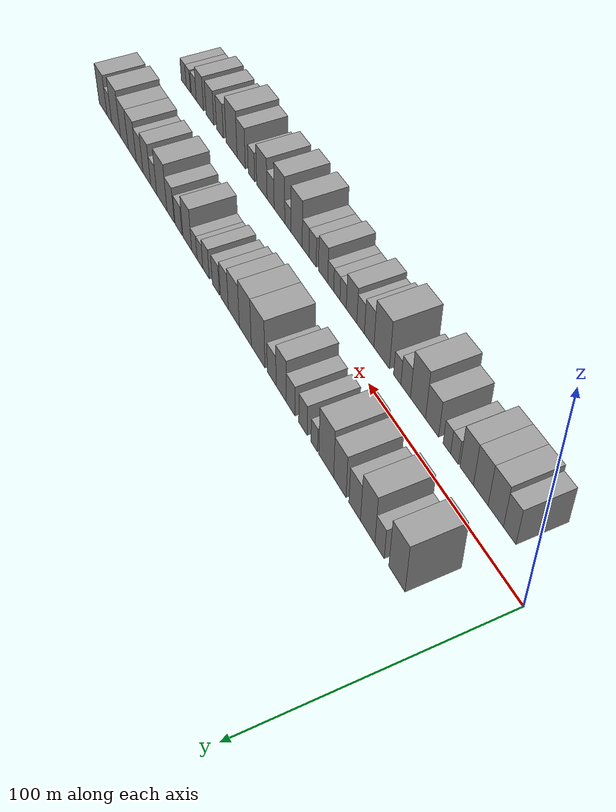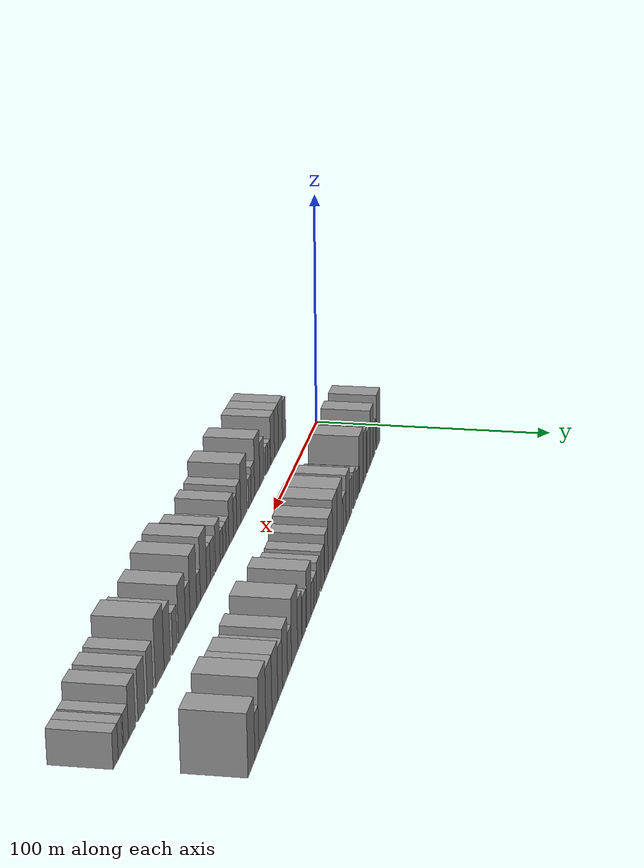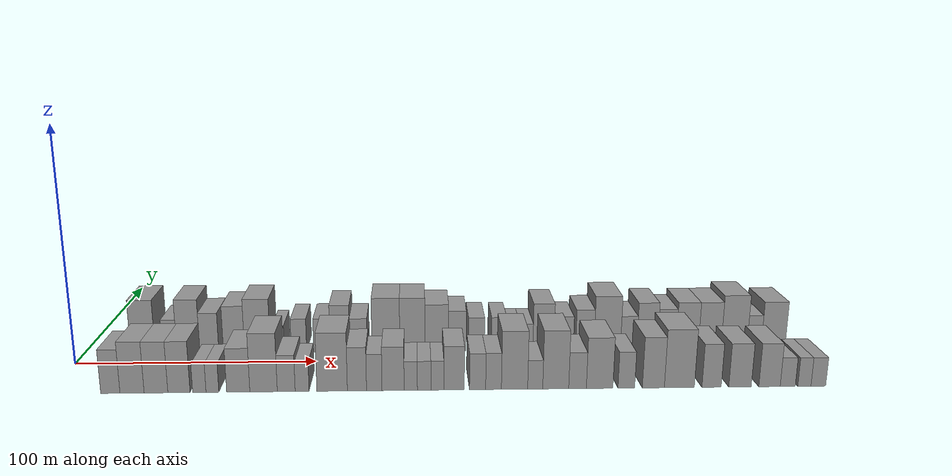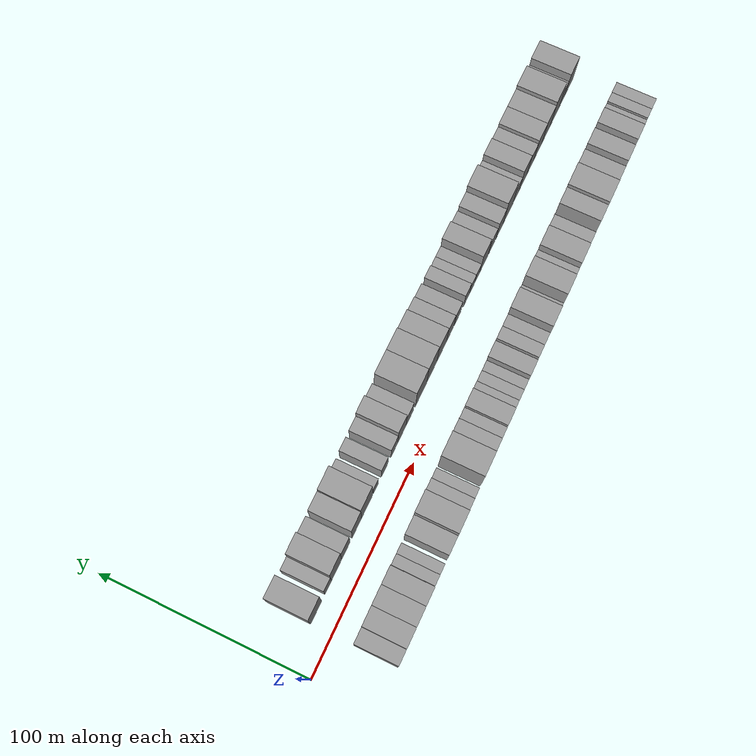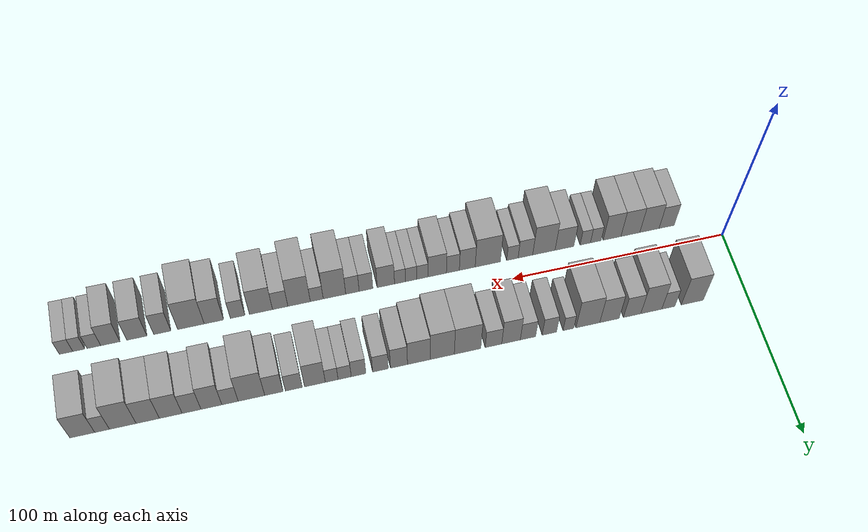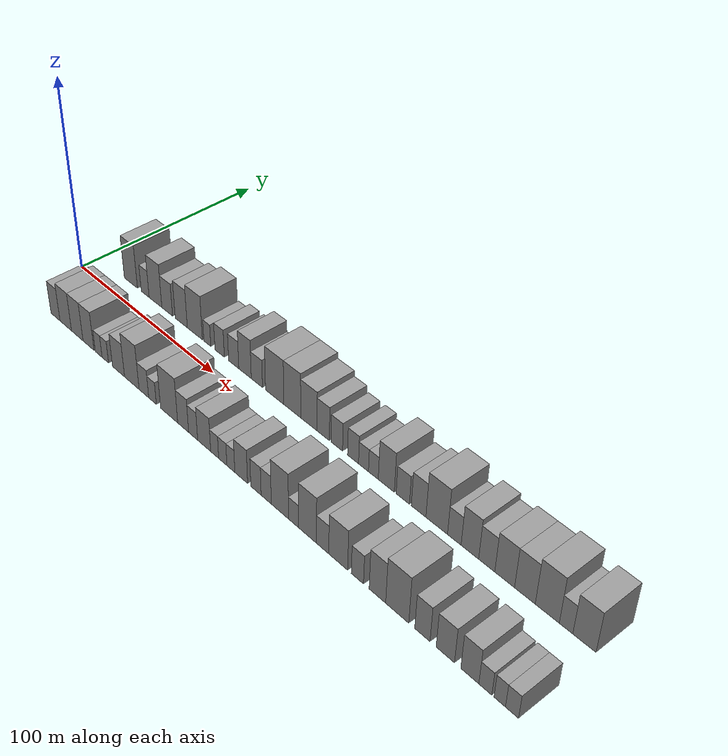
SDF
<sdf version="1.6">
 <world name="default">
  <scene>
   <sky><clouds><speed>12</speed></clouds></sky>
   <ambient>0.4 0.4 0.4 1</ambient>
   <background>0.7 0.7 0.7 1</background>
   <shadows>1</shadows>
  </scene>
  <gravity>0 0 -9.8066</gravity>
  <magnetic_field>6e-06 2.3e-05 -4.2e-05</magnetic_field>
  <physics default="0" name="default_physics" type="ode">
   <ode>
    <solver>
     <type>quick</type>
     <iters>10</iters>
     <sor>1.0</sor>
     <use_dynamic_moi_rescaling>0</use_dynamic_moi_rescaling>
    </solver>
    <constraints>
     <cfm>0</cfm>
     <erp>0.2</erp>
     <contact_max_correcting_vel>100</contact_max_correcting_vel>
     <contact_surface_layer>0.001</contact_surface_layer>
    </constraints>
   </ode>
   <max_step_size>0.004</max_step_size>
   <real_time_factor>1</real_time_factor>
   <real_time_update_rate>250</real_time_update_rate>
  </physics>
  <light name="sun" type="directional">
   <pose>0 0 10 0 0 0</pose>
   <diffuse>0.8 0.8 0.8 1</diffuse>
   <specular>0.2 0.2 0.2 1</specular>
   <attenuation>
    <range>1000</range>
    <constant>0.9</constant>
    <linear>0.01</linear>
    <quadratic>0.001</quadratic>
   </attenuation>
   <direction>-0.5 0.1 -0.9</direction>
  </light>
  <model name="building_1">
   <static>1</static>
   <pose>25.1743 20.0000 0 0.000000 0.000000 1.570796</pose>
   <link name="link">
    <pose>0 0 12.00 0 0 0</pose>
    <collision name="collision"><geometry><box><size>20.0000 10.3486 24.0000</size></box></geometry></collision>
    <visual name="visual">
     <cast_shadows>0</cast_shadows>
     <geometry><box><size>20.0000 10.3486 24.0000</size></box></geometry>
     <material>
      <script>
       <uri>model://grey_wall/materials/scripts</uri>
       <uri>model://grey_wall/materials/textures</uri>
       <name>vrc/grey_wall</name>
      </script>
     </material>
    </visual>
   </link>
  </model>
  <model name="building_2">
   <static>1</static>
   <pose>36.4311 20.0000 0 0.000000 0.000000 1.570796</pose>
   <link name="link">
    <pose>0 0 7.50 0 0 0</pose>
    <collision name="collision"><geometry><box><size>20.0000 6.1650 15.0000</size></box></geometry></collision>
    <visual name="visual">
     <cast_shadows>0</cast_shadows>
     <geometry><box><size>20.0000 6.1650 15.0000</size></box></geometry>
     <material>
      <script>
       <uri>model://grey_wall/materials/scripts</uri>
       <uri>model://grey_wall/materials/textures</uri>
       <name>vrc/grey_wall</name>
      </script>
     </material>
    </visual>
   </link>
  </model>
  <model name="building_3">
   <static>1</static>
   <pose>44.3929 20.0000 0 0.000000 0.000000 1.570796</pose>
   <link name="link">
    <pose>0 0 12.00 0 0 0</pose>
    <collision name="collision"><geometry><box><size>20.0000 9.7587 24.0000</size></box></geometry></collision>
    <visual name="visual">
     <cast_shadows>0</cast_shadows>
     <geometry><box><size>20.0000 9.7587 24.0000</size></box></geometry>
     <material>
      <script>
       <uri>model://grey_wall/materials/scripts</uri>
       <uri>model://grey_wall/materials/textures</uri>
       <name>vrc/grey_wall</name>
      </script>
     </material>
    </visual>
   </link>
  </model>
  <model name="building_4">
   <static>1</static>
   <pose>53.3143 20.0000 0 0.000000 0.000000 1.570796</pose>
   <link name="link">
    <pose>0 0 9.00 0 0 0</pose>
    <collision name="collision"><geometry><box><size>20.0000 8.0840 18.0000</size></box></geometry></collision>
    <visual name="visual">
     <cast_shadows>0</cast_shadows>
     <geometry><box><size>20.0000 8.0840 18.0000</size></box></geometry>
     <material>
      <script>
       <uri>model://grey_wall/materials/scripts</uri>
       <uri>model://grey_wall/materials/textures</uri>
       <name>vrc/grey_wall</name>
      </script>
     </material>
    </visual>
   </link>
  </model>
  <model name="building_5">
   <static>1</static>
   <pose>63.8279 20.0000 0 0.000000 0.000000 1.570796</pose>
   <link name="link">
    <pose>0 0 10.50 0 0 0</pose>
    <collision name="collision"><geometry><box><size>20.0000 8.9433 21.0000</size></box></geometry></collision>
    <visual name="visual">
     <cast_shadows>0</cast_shadows>
     <geometry><box><size>20.0000 8.9433 21.0000</size></box></geometry>
     <material>
      <script>
       <uri>model://grey_wall/materials/scripts</uri>
       <uri>model://grey_wall/materials/textures</uri>
       <name>vrc/grey_wall</name>
      </script>
     </material>
    </visual>
   </link>
  </model>
  <model name="building_6">
   <static>1</static>
   <pose>73.7910 20.0000 0 0.000000 0.000000 1.570796</pose>
   <link name="link">
    <pose>0 0 12.00 0 0 0</pose>
    <collision name="collision"><geometry><box><size>20.0000 10.9828 24.0000</size></box></geometry></collision>
    <visual name="visual">
     <cast_shadows>0</cast_shadows>
     <geometry><box><size>20.0000 10.9828 24.0000</size></box></geometry>
     <material>
      <script>
       <uri>model://grey_wall/materials/scripts</uri>
       <uri>model://grey_wall/materials/textures</uri>
       <name>vrc/grey_wall</name>
      </script>
     </material>
    </visual>
   </link>
  </model>
  <model name="building_7">
   <static>1</static>
   <pose>82.7563 20.0000 0 0.000000 0.000000 1.570796</pose>
   <link name="link">
    <pose>0 0 6.00 0 0 0</pose>
    <collision name="collision"><geometry><box><size>20.0000 4.9477 12.0000</size></box></geometry></collision>
    <visual name="visual">
     <cast_shadows>0</cast_shadows>
     <geometry><box><size>20.0000 4.9477 12.0000</size></box></geometry>
     <material>
      <script>
       <uri>model://grey_wall/materials/scripts</uri>
       <uri>model://grey_wall/materials/textures</uri>
       <name>vrc/grey_wall</name>
      </script>
     </material>
    </visual>
   </link>
  </model>
  <model name="building_8">
   <static>1</static>
   <pose>91.5076 20.0000 0 0.000000 0.000000 1.570796</pose>
   <link name="link">
    <pose>0 0 7.50 0 0 0</pose>
    <collision name="collision"><geometry><box><size>20.0000 6.5549 15.0000</size></box></geometry></collision>
    <visual name="visual">
     <cast_shadows>0</cast_shadows>
     <geometry><box><size>20.0000 6.5549 15.0000</size></box></geometry>
     <material>
      <script>
       <uri>model://grey_wall/materials/scripts</uri>
       <uri>model://grey_wall/materials/textures</uri>
       <name>vrc/grey_wall</name>
      </script>
     </material>
    </visual>
   </link>
  </model>
  <model name="building_9">
   <static>1</static>
   <pose>101.2741 20.0000 0 0.000000 0.000000 1.570796</pose>
   <link name="link">
    <pose>0 0 7.50 0 0 0</pose>
    <collision name="collision"><geometry><box><size>20.0000 6.9781 15.0000</size></box></geometry></collision>
    <visual name="visual">
     <cast_shadows>0</cast_shadows>
     <geometry><box><size>20.0000 6.9781 15.0000</size></box></geometry>
     <material>
      <script>
       <uri>model://grey_wall/materials/scripts</uri>
       <uri>model://grey_wall/materials/textures</uri>
       <name>vrc/grey_wall</name>
      </script>
     </material>
    </visual>
   </link>
  </model>
  <model name="building_10">
   <static>1</static>
   <pose>108.9862 20.0000 0 0.000000 0.000000 1.570796</pose>
   <link name="link">
    <pose>0 0 10.50 0 0 0</pose>
    <collision name="collision"><geometry><box><size>20.0000 8.4461 21.0000</size></box></geometry></collision>
    <visual name="visual">
     <cast_shadows>0</cast_shadows>
     <geometry><box><size>20.0000 8.4461 21.0000</size></box></geometry>
     <material>
      <script>
       <uri>model://grey_wall/materials/scripts</uri>
       <uri>model://grey_wall/materials/textures</uri>
       <name>vrc/grey_wall</name>
      </script>
     </material>
    </visual>
   </link>
  </model>
  <model name="building_11">
   <static>1</static>
   <pose>116.9474 20.0000 0 0.000000 0.000000 1.570796</pose>
   <link name="link">
    <pose>0 0 7.50 0 0 0</pose>
    <collision name="collision"><geometry><box><size>20.0000 7.4762 15.0000</size></box></geometry></collision>
    <visual name="visual">
     <cast_shadows>0</cast_shadows>
     <geometry><box><size>20.0000 7.4762 15.0000</size></box></geometry>
     <material>
      <script>
       <uri>model://grey_wall/materials/scripts</uri>
       <uri>model://grey_wall/materials/textures</uri>
       <name>vrc/grey_wall</name>
      </script>
     </material>
    </visual>
   </link>
  </model>
  <model name="building_12">
   <static>1</static>
   <pose>128.6530 20.0000 0 0.000000 0.000000 1.570796</pose>
   <link name="link">
    <pose>0 0 12.00 0 0 0</pose>
    <collision name="collision"><geometry><box><size>20.0000 11.9351 24.0000</size></box></geometry></collision>
    <visual name="visual">
     <cast_shadows>0</cast_shadows>
     <geometry><box><size>20.0000 11.9351 24.0000</size></box></geometry>
     <material>
      <script>
       <uri>model://grey_wall/materials/scripts</uri>
       <uri>model://grey_wall/materials/textures</uri>
       <name>vrc/grey_wall</name>
      </script>
     </material>
    </visual>
   </link>
  </model>
  <model name="building_13">
   <static>1</static>
   <pose>140.0037 20.0000 0 0.000000 0.000000 1.570796</pose>
   <link name="link">
    <pose>0 0 12.00 0 0 0</pose>
    <collision name="collision"><geometry><box><size>20.0000 10.7661 24.0000</size></box></geometry></collision>
    <visual name="visual">
     <cast_shadows>0</cast_shadows>
     <geometry><box><size>20.0000 10.7661 24.0000</size></box></geometry>
     <material>
      <script>
       <uri>model://grey_wall/materials/scripts</uri>
       <uri>model://grey_wall/materials/textures</uri>
       <name>vrc/grey_wall</name>
      </script>
     </material>
    </visual>
   </link>
  </model>
  <model name="building_14">
   <static>1</static>
   <pose>150.4808 20.0000 0 0.000000 0.000000 1.570796</pose>
   <link name="link">
    <pose>0 0 10.50 0 0 0</pose>
    <collision name="collision"><geometry><box><size>20.0000 10.1882 21.0000</size></box></geometry></collision>
    <visual name="visual">
     <cast_shadows>0</cast_shadows>
     <geometry><box><size>20.0000 10.1882 21.0000</size></box></geometry>
     <material>
      <script>
       <uri>model://grey_wall/materials/scripts</uri>
       <uri>model://grey_wall/materials/textures</uri>
       <name>vrc/grey_wall</name>
      </script>
     </material>
    </visual>
   </link>
  </model>
  <model name="building_15">
   <static>1</static>
   <pose>159.3517 20.0000 0 0.000000 0.000000 1.570796</pose>
   <link name="link">
    <pose>0 0 9.00 0 0 0</pose>
    <collision name="collision"><geometry><box><size>20.0000 7.5536 18.0000</size></box></geometry></collision>
    <visual name="visual">
     <cast_shadows>0</cast_shadows>
     <geometry><box><size>20.0000 7.5536 18.0000</size></box></geometry>
     <material>
      <script>
       <uri>model://grey_wall/materials/scripts</uri>
       <uri>model://grey_wall/materials/textures</uri>
       <name>vrc/grey_wall</name>
      </script>
     </material>
    </visual>
   </link>
  </model>
  <model name="building_16">
   <static>1</static>
   <pose>167.5825 20.0000 0 0.000000 0.000000 1.570796</pose>
   <link name="link">
    <pose>0 0 7.50 0 0 0</pose>
    <collision name="collision"><geometry><box><size>20.0000 6.9079 15.0000</size></box></geometry></collision>
    <visual name="visual">
     <cast_shadows>0</cast_shadows>
     <geometry><box><size>20.0000 6.9079 15.0000</size></box></geometry>
     <material>
      <script>
       <uri>model://grey_wall/materials/scripts</uri>
       <uri>model://grey_wall/materials/textures</uri>
       <name>vrc/grey_wall</name>
      </script>
     </material>
    </visual>
   </link>
  </model>
  <model name="building_17">
   <static>1</static>
   <pose>177.2707 20.0000 0 0.000000 0.000000 1.570796</pose>
   <link name="link">
    <pose>0 0 7.50 0 0 0</pose>
    <collision name="collision"><geometry><box><size>20.0000 6.4686 15.0000</size></box></geometry></collision>
    <visual name="visual">
     <cast_shadows>0</cast_shadows>
     <geometry><box><size>20.0000 6.4686 15.0000</size></box></geometry>
     <material>
      <script>
       <uri>model://grey_wall/materials/scripts</uri>
       <uri>model://grey_wall/materials/textures</uri>
       <name>vrc/grey_wall</name>
      </script>
     </material>
    </visual>
   </link>
  </model>
  <model name="building_18">
   <static>1</static>
   <pose>183.3950 20.0000 0 0.000000 0.000000 1.570796</pose>
   <link name="link">
    <pose>0 0 6.00 0 0 0</pose>
    <collision name="collision"><geometry><box><size>20.0000 5.7799 12.0000</size></box></geometry></collision>
    <visual name="visual">
     <cast_shadows>0</cast_shadows>
     <geometry><box><size>20.0000 5.7799 12.0000</size></box></geometry>
     <material>
      <script>
       <uri>model://grey_wall/materials/scripts</uri>
       <uri>model://grey_wall/materials/textures</uri>
       <name>vrc/grey_wall</name>
      </script>
     </material>
    </visual>
   </link>
  </model>
  <model name="building_19">
   <static>1</static>
   <pose>189.0943 20.0000 0 0.000000 0.000000 1.570796</pose>
   <link name="link">
    <pose>0 0 6.00 0 0 0</pose>
    <collision name="collision"><geometry><box><size>20.0000 5.6186 12.0000</size></box></geometry></collision>
    <visual name="visual">
     <cast_shadows>0</cast_shadows>
     <geometry><box><size>20.0000 5.6186 12.0000</size></box></geometry>
     <material>
      <script>
       <uri>model://grey_wall/materials/scripts</uri>
       <uri>model://grey_wall/materials/textures</uri>
       <name>vrc/grey_wall</name>
      </script>
     </material>
    </visual>
   </link>
  </model>
  <model name="building_20">
   <static>1</static>
   <pose>196.4568 20.0000 0 0.000000 0.000000 1.570796</pose>
   <link name="link">
    <pose>0 0 10.50 0 0 0</pose>
    <collision name="collision"><geometry><box><size>20.0000 9.1064 21.0000</size></box></geometry></collision>
    <visual name="visual">
     <cast_shadows>0</cast_shadows>
     <geometry><box><size>20.0000 9.1064 21.0000</size></box></geometry>
     <material>
      <script>
       <uri>model://grey_wall/materials/scripts</uri>
       <uri>model://grey_wall/materials/textures</uri>
       <name>vrc/grey_wall</name>
      </script>
     </material>
    </visual>
   </link>
  </model>
  <model name="building_21">
   <static>1</static>
   <pose>205.6978 20.0000 0 0.000000 0.000000 1.570796</pose>
   <link name="link">
    <pose>0 0 7.50 0 0 0</pose>
    <collision name="collision"><geometry><box><size>20.0000 7.3757 15.0000</size></box></geometry></collision>
    <visual name="visual">
     <cast_shadows>0</cast_shadows>
     <geometry><box><size>20.0000 7.3757 15.0000</size></box></geometry>
     <material>
      <script>
       <uri>model://grey_wall/materials/scripts</uri>
       <uri>model://grey_wall/materials/textures</uri>
       <name>vrc/grey_wall</name>
      </script>
     </material>
    </visual>
   </link>
  </model>
  <model name="building_22">
   <static>1</static>
   <pose>214.3622 20.0000 0 0.000000 0.000000 1.570796</pose>
   <link name="link">
    <pose>0 0 9.00 0 0 0</pose>
    <collision name="collision"><geometry><box><size>20.0000 7.9530 18.0000</size></box></geometry></collision>
    <visual name="visual">
     <cast_shadows>0</cast_shadows>
     <geometry><box><size>20.0000 7.9530 18.0000</size></box></geometry>
     <material>
      <script>
       <uri>model://grey_wall/materials/scripts</uri>
       <uri>model://grey_wall/materials/textures</uri>
       <name>vrc/grey_wall</name>
      </script>
     </material>
    </visual>
   </link>
  </model>
  <model name="building_23">
   <static>1</static>
   <pose>224.0813 20.0000 0 0.000000 0.000000 1.570796</pose>
   <link name="link">
    <pose>0 0 12.00 0 0 0</pose>
    <collision name="collision"><geometry><box><size>20.0000 11.4852 24.0000</size></box></geometry></collision>
    <visual name="visual">
     <cast_shadows>0</cast_shadows>
     <geometry><box><size>20.0000 11.4852 24.0000</size></box></geometry>
     <material>
      <script>
       <uri>model://grey_wall/materials/scripts</uri>
       <uri>model://grey_wall/materials/textures</uri>
       <name>vrc/grey_wall</name>
      </script>
     </material>
    </visual>
   </link>
  </model>
  <model name="building_24">
   <static>1</static>
   <pose>233.3610 20.0000 0 0.000000 0.000000 1.570796</pose>
   <link name="link">
    <pose>0 0 7.50 0 0 0</pose>
    <collision name="collision"><geometry><box><size>20.0000 7.0742 15.0000</size></box></geometry></collision>
    <visual name="visual">
     <cast_shadows>0</cast_shadows>
     <geometry><box><size>20.0000 7.0742 15.0000</size></box></geometry>
     <material>
      <script>
       <uri>model://grey_wall/materials/scripts</uri>
       <uri>model://grey_wall/materials/textures</uri>
       <name>vrc/grey_wall</name>
      </script>
     </material>
    </visual>
   </link>
  </model>
  <model name="building_25">
   <static>1</static>
   <pose>241.3886 20.0000 0 0.000000 0.000000 1.570796</pose>
   <link name="link">
    <pose>0 0 10.50 0 0 0</pose>
    <collision name="collision"><geometry><box><size>20.0000 8.9811 21.0000</size></box></geometry></collision>
    <visual name="visual">
     <cast_shadows>0</cast_shadows>
     <geometry><box><size>20.0000 8.9811 21.0000</size></box></geometry>
     <material>
      <script>
       <uri>model://grey_wall/materials/scripts</uri>
       <uri>model://grey_wall/materials/textures</uri>
       <name>vrc/grey_wall</name>
      </script>
     </material>
    </visual>
   </link>
  </model>
  <model name="building_26">
   <static>1</static>
   <pose>249.9192 20.0000 0 0.000000 0.000000 1.570796</pose>
   <link name="link">
    <pose>0 0 9.00 0 0 0</pose>
    <collision name="collision"><geometry><box><size>20.0000 8.0800 18.0000</size></box></geometry></collision>
    <visual name="visual">
     <cast_shadows>0</cast_shadows>
     <geometry><box><size>20.0000 8.0800 18.0000</size></box></geometry>
     <material>
      <script>
       <uri>model://grey_wall/materials/scripts</uri>
       <uri>model://grey_wall/materials/textures</uri>
       <name>vrc/grey_wall</name>
      </script>
     </material>
    </visual>
   </link>
  </model>
  <model name="building_27">
   <static>1</static>
   <pose>258.8169 20.0000 0 0.000000 0.000000 1.570796</pose>
   <link name="link">
    <pose>0 0 10.50 0 0 0</pose>
    <collision name="collision"><geometry><box><size>20.0000 9.7153 21.0000</size></box></geometry></collision>
    <visual name="visual">
     <cast_shadows>0</cast_shadows>
     <geometry><box><size>20.0000 9.7153 21.0000</size></box></geometry>
     <material>
      <script>
       <uri>model://grey_wall/materials/scripts</uri>
       <uri>model://grey_wall/materials/textures</uri>
       <name>vrc/grey_wall</name>
      </script>
     </material>
    </visual>
   </link>
  </model>
  <model name="building_28">
   <static>1</static>
   <pose>268.6389 20.0000 0 0.000000 0.000000 1.570796</pose>
   <link name="link">
    <pose>0 0 10.50 0 0 0</pose>
    <collision name="collision"><geometry><box><size>20.0000 9.9288 21.0000</size></box></geometry></collision>
    <visual name="visual">
     <cast_shadows>0</cast_shadows>
     <geometry><box><size>20.0000 9.9288 21.0000</size></box></geometry>
     <material>
      <script>
       <uri>model://grey_wall/materials/scripts</uri>
       <uri>model://grey_wall/materials/textures</uri>
       <name>vrc/grey_wall</name>
      </script>
     </material>
    </visual>
   </link>
  </model>
  <model name="building_29">
   <static>1</static>
   <pose>279.2362 20.0000 0 0.000000 0.000000 1.570796</pose>
   <link name="link">
    <pose>0 0 12.00 0 0 0</pose>
    <collision name="collision"><geometry><box><size>20.0000 11.2658 24.0000</size></box></geometry></collision>
    <visual name="visual">
     <cast_shadows>0</cast_shadows>
     <geometry><box><size>20.0000 11.2658 24.0000</size></box></geometry>
     <material>
      <script>
       <uri>model://grey_wall/materials/scripts</uri>
       <uri>model://grey_wall/materials/textures</uri>
       <name>vrc/grey_wall</name>
      </script>
     </material>
    </visual>
   </link>
  </model>
  <model name="building_30">
   <static>1</static>
   <pose>287.9729 20.0000 0 0.000000 0.000000 1.570796</pose>
   <link name="link">
    <pose>0 0 7.50 0 0 0</pose>
    <collision name="collision"><geometry><box><size>20.0000 6.2075 15.0000</size></box></geometry></collision>
    <visual name="visual">
     <cast_shadows>0</cast_shadows>
     <geometry><box><size>20.0000 6.2075 15.0000</size></box></geometry>
     <material>
      <script>
       <uri>model://grey_wall/materials/scripts</uri>
       <uri>model://grey_wall/materials/textures</uri>
       <name>vrc/grey_wall</name>
      </script>
     </material>
    </visual>
   </link>
  </model>
  <model name="building_31">
   <static>1</static>
   <pose>296.3092 20.0000 0 0.000000 0.000000 1.570796</pose>
   <link name="link">
    <pose>0 0 10.50 0 0 0</pose>
    <collision name="collision"><geometry><box><size>20.0000 10.4650 21.0000</size></box></geometry></collision>
    <visual name="visual">
     <cast_shadows>0</cast_shadows>
     <geometry><box><size>20.0000 10.4650 21.0000</size></box></geometry>
     <material>
      <script>
       <uri>model://grey_wall/materials/scripts</uri>
       <uri>model://grey_wall/materials/textures</uri>
       <name>vrc/grey_wall</name>
      </script>
     </material>
    </visual>
   </link>
  </model>
  <model name="building_32">
   <static>1</static>
   <pose>23.6801 -20.0000 0 0.000000 0.000000 1.570796</pose>
   <link name="link">
    <pose>0 0 9.00 0 0 0</pose>
    <collision name="collision"><geometry><box><size>20.0000 7.3602 18.0000</size></box></geometry></collision>
    <visual name="visual">
     <cast_shadows>0</cast_shadows>
     <geometry><box><size>20.0000 7.3602 18.0000</size></box></geometry>
     <material>
      <script>
       <uri>model://grey_wall/materials/scripts</uri>
       <uri>model://grey_wall/materials/textures</uri>
       <name>vrc/grey_wall</name>
      </script>
     </material>
    </visual>
   </link>
  </model>
  <model name="building_33">
   <static>1</static>
   <pose>31.9837 -20.0000 0 0.000000 0.000000 1.570796</pose>
   <link name="link">
    <pose>0 0 10.50 0 0 0</pose>
    <collision name="collision"><geometry><box><size>20.0000 9.2469 21.0000</size></box></geometry></collision>
    <visual name="visual">
     <cast_shadows>0</cast_shadows>
     <geometry><box><size>20.0000 9.2469 21.0000</size></box></geometry>
     <material>
      <script>
       <uri>model://grey_wall/materials/scripts</uri>
       <uri>model://grey_wall/materials/textures</uri>
       <name>vrc/grey_wall</name>
      </script>
     </material>
    </visual>
   </link>
  </model>
  <model name="building_34">
   <static>1</static>
   <pose>41.1526 -20.0000 0 0.000000 0.000000 1.570796</pose>
   <link name="link">
    <pose>0 0 10.50 0 0 0</pose>
    <collision name="collision"><geometry><box><size>20.0000 9.0909 21.0000</size></box></geometry></collision>
    <visual name="visual">
     <cast_shadows>0</cast_shadows>
     <geometry><box><size>20.0000 9.0909 21.0000</size></box></geometry>
     <material>
      <script>
       <uri>model://grey_wall/materials/scripts</uri>
       <uri>model://grey_wall/materials/textures</uri>
       <name>vrc/grey_wall</name>
      </script>
     </material>
    </visual>
   </link>
  </model>
  <model name="building_35">
   <static>1</static>
   <pose>49.9651 -20.0000 0 0.000000 0.000000 1.570796</pose>
   <link name="link">
    <pose>0 0 10.50 0 0 0</pose>
    <collision name="collision"><geometry><box><size>20.0000 8.5342 21.0000</size></box></geometry></collision>
    <visual name="visual">
     <cast_shadows>0</cast_shadows>
     <geometry><box><size>20.0000 8.5342 21.0000</size></box></geometry>
     <material>
      <script>
       <uri>model://grey_wall/materials/scripts</uri>
       <uri>model://grey_wall/materials/textures</uri>
       <name>vrc/grey_wall</name>
      </script>
     </material>
    </visual>
   </link>
  </model>
  <model name="building_36">
   <static>1</static>
   <pose>57.7911 -20.0000 0 0.000000 0.000000 1.570796</pose>
   <link name="link">
    <pose>0 0 6.00 0 0 0</pose>
    <collision name="collision"><geometry><box><size>20.0000 5.1178 12.0000</size></box></geometry></collision>
    <visual name="visual">
     <cast_shadows>0</cast_shadows>
     <geometry><box><size>20.0000 5.1178 12.0000</size></box></geometry>
     <material>
      <script>
       <uri>model://grey_wall/materials/scripts</uri>
       <uri>model://grey_wall/materials/textures</uri>
       <name>vrc/grey_wall</name>
      </script>
     </material>
    </visual>
   </link>
  </model>
  <model name="building_37">
   <static>1</static>
   <pose>62.8131 -20.0000 0 0.000000 0.000000 1.570796</pose>
   <link name="link">
    <pose>0 0 6.00 0 0 0</pose>
    <collision name="collision"><geometry><box><size>20.0000 4.9261 12.0000</size></box></geometry></collision>
    <visual name="visual">
     <cast_shadows>0</cast_shadows>
     <geometry><box><size>20.0000 4.9261 12.0000</size></box></geometry>
     <material>
      <script>
       <uri>model://grey_wall/materials/scripts</uri>
       <uri>model://grey_wall/materials/textures</uri>
       <name>vrc/grey_wall</name>
      </script>
     </material>
    </visual>
   </link>
  </model>
  <model name="building_38">
   <static>1</static>
   <pose>72.7367 -20.0000 0 0.000000 0.000000 1.570796</pose>
   <link name="link">
    <pose>0 0 9.00 0 0 0</pose>
    <collision name="collision"><geometry><box><size>20.0000 8.9212 18.0000</size></box></geometry></collision>
    <visual name="visual">
     <cast_shadows>0</cast_shadows>
     <geometry><box><size>20.0000 8.9212 18.0000</size></box></geometry>
     <material>
      <script>
       <uri>model://grey_wall/materials/scripts</uri>
       <uri>model://grey_wall/materials/textures</uri>
       <name>vrc/grey_wall</name>
      </script>
     </material>
    </visual>
   </link>
  </model>
  <model name="building_39">
   <static>1</static>
   <pose>82.4959 -20.0000 0 0.000000 0.000000 1.570796</pose>
   <link name="link">
    <pose>0 0 12.00 0 0 0</pose>
    <collision name="collision"><geometry><box><size>20.0000 10.5970 24.0000</size></box></geometry></collision>
    <visual name="visual">
     <cast_shadows>0</cast_shadows>
     <geometry><box><size>20.0000 10.5970 24.0000</size></box></geometry>
     <material>
      <script>
       <uri>model://grey_wall/materials/scripts</uri>
       <uri>model://grey_wall/materials/textures</uri>
       <name>vrc/grey_wall</name>
      </script>
     </material>
    </visual>
   </link>
  </model>
  <model name="building_40">
   <static>1</static>
   <pose>91.2389 -20.0000 0 0.000000 0.000000 1.570796</pose>
   <link name="link">
    <pose>0 0 7.50 0 0 0</pose>
    <collision name="collision"><geometry><box><size>20.0000 6.8890 15.0000</size></box></geometry></collision>
    <visual name="visual">
     <cast_shadows>0</cast_shadows>
     <geometry><box><size>20.0000 6.8890 15.0000</size></box></geometry>
     <material>
      <script>
       <uri>model://grey_wall/materials/scripts</uri>
       <uri>model://grey_wall/materials/textures</uri>
       <name>vrc/grey_wall</name>
      </script>
     </material>
    </visual>
   </link>
  </model>
  <model name="building_41">
   <static>1</static>
   <pose>97.3711 -20.0000 0 0.000000 0.000000 1.570796</pose>
   <link name="link">
    <pose>0 0 6.00 0 0 0</pose>
    <collision name="collision"><geometry><box><size>20.0000 5.3754 12.0000</size></box></geometry></collision>
    <visual name="visual">
     <cast_shadows>0</cast_shadows>
     <geometry><box><size>20.0000 5.3754 12.0000</size></box></geometry>
     <material>
      <script>
       <uri>model://grey_wall/materials/scripts</uri>
       <uri>model://grey_wall/materials/textures</uri>
       <name>vrc/grey_wall</name>
      </script>
     </material>
    </visual>
   </link>
  </model>
  <model name="building_42">
   <static>1</static>
   <pose>108.9566 -20.0000 0 0.000000 0.000000 1.570796</pose>
   <link name="link">
    <pose>0 0 12.00 0 0 0</pose>
    <collision name="collision"><geometry><box><size>20.0000 11.7955 24.0000</size></box></geometry></collision>
    <visual name="visual">
     <cast_shadows>0</cast_shadows>
     <geometry><box><size>20.0000 11.7955 24.0000</size></box></geometry>
     <material>
      <script>
       <uri>model://grey_wall/materials/scripts</uri>
       <uri>model://grey_wall/materials/textures</uri>
       <name>vrc/grey_wall</name>
      </script>
     </material>
    </visual>
   </link>
  </model>
  <model name="building_43">
   <static>1</static>
   <pose>118.5532 -20.0000 0 0.000000 0.000000 1.570796</pose>
   <link name="link">
    <pose>0 0 9.00 0 0 0</pose>
    <collision name="collision"><geometry><box><size>20.0000 7.3978 18.0000</size></box></geometry></collision>
    <visual name="visual">
     <cast_shadows>0</cast_shadows>
     <geometry><box><size>20.0000 7.3978 18.0000</size></box></geometry>
     <material>
      <script>
       <uri>model://grey_wall/materials/scripts</uri>
       <uri>model://grey_wall/materials/textures</uri>
       <name>vrc/grey_wall</name>
      </script>
     </material>
    </visual>
   </link>
  </model>
  <model name="building_44">
   <static>1</static>
   <pose>125.2570 -20.0000 0 0.000000 0.000000 1.570796</pose>
   <link name="link">
    <pose>0 0 7.50 0 0 0</pose>
    <collision name="collision"><geometry><box><size>20.0000 6.0097 15.0000</size></box></geometry></collision>
    <visual name="visual">
     <cast_shadows>0</cast_shadows>
     <geometry><box><size>20.0000 6.0097 15.0000</size></box></geometry>
     <material>
      <script>
       <uri>model://grey_wall/materials/scripts</uri>
       <uri>model://grey_wall/materials/textures</uri>
       <name>vrc/grey_wall</name>
      </script>
     </material>
    </visual>
   </link>
  </model>
  <model name="building_45">
   <static>1</static>
   <pose>132.5436 -20.0000 0 0.000000 0.000000 1.570796</pose>
   <link name="link">
    <pose>0 0 9.00 0 0 0</pose>
    <collision name="collision"><geometry><box><size>20.0000 8.5635 18.0000</size></box></geometry></collision>
    <visual name="visual">
     <cast_shadows>0</cast_shadows>
     <geometry><box><size>20.0000 8.5635 18.0000</size></box></geometry>
     <material>
      <script>
       <uri>model://grey_wall/materials/scripts</uri>
       <uri>model://grey_wall/materials/textures</uri>
       <name>vrc/grey_wall</name>
      </script>
     </material>
    </visual>
   </link>
  </model>
  <model name="building_46">
   <static>1</static>
   <pose>139.4024 -20.0000 0 0.000000 0.000000 1.570796</pose>
   <link name="link">
    <pose>0 0 6.00 0 0 0</pose>
    <collision name="collision"><geometry><box><size>20.0000 5.1542 12.0000</size></box></geometry></collision>
    <visual name="visual">
     <cast_shadows>0</cast_shadows>
     <geometry><box><size>20.0000 5.1542 12.0000</size></box></geometry>
     <material>
      <script>
       <uri>model://grey_wall/materials/scripts</uri>
       <uri>model://grey_wall/materials/textures</uri>
       <name>vrc/grey_wall</name>
      </script>
     </material>
    </visual>
   </link>
  </model>
  <model name="building_47">
   <static>1</static>
   <pose>144.6136 -20.0000 0 0.000000 0.000000 1.570796</pose>
   <link name="link">
    <pose>0 0 6.00 0 0 0</pose>
    <collision name="collision"><geometry><box><size>20.0000 5.2681 12.0000</size></box></geometry></collision>
    <visual name="visual">
     <cast_shadows>0</cast_shadows>
     <geometry><box><size>20.0000 5.2681 12.0000</size></box></geometry>
     <material>
      <script>
       <uri>model://grey_wall/materials/scripts</uri>
       <uri>model://grey_wall/materials/textures</uri>
       <name>vrc/grey_wall</name>
      </script>
     </material>
    </visual>
   </link>
  </model>
  <model name="building_48">
   <static>1</static>
   <pose>149.7657 -20.0000 0 0.000000 0.000000 1.570796</pose>
   <link name="link">
    <pose>0 0 6.00 0 0 0</pose>
    <collision name="collision"><geometry><box><size>20.0000 5.0360 12.0000</size></box></geometry></collision>
    <visual name="visual">
     <cast_shadows>0</cast_shadows>
     <geometry><box><size>20.0000 5.0360 12.0000</size></box></geometry>
     <material>
      <script>
       <uri>model://grey_wall/materials/scripts</uri>
       <uri>model://grey_wall/materials/textures</uri>
       <name>vrc/grey_wall</name>
      </script>
     </material>
    </visual>
   </link>
  </model>
  <model name="building_49">
   <static>1</static>
   <pose>156.2606 -20.0000 0 0.000000 0.000000 1.570796</pose>
   <link name="link">
    <pose>0 0 9.00 0 0 0</pose>
    <collision name="collision"><geometry><box><size>20.0000 7.9537 18.0000</size></box></geometry></collision>
    <visual name="visual">
     <cast_shadows>0</cast_shadows>
     <geometry><box><size>20.0000 7.9537 18.0000</size></box></geometry>
     <material>
      <script>
       <uri>model://grey_wall/materials/scripts</uri>
       <uri>model://grey_wall/materials/textures</uri>
       <name>vrc/grey_wall</name>
      </script>
     </material>
    </visual>
   </link>
  </model>
  <model name="building_50">
   <static>1</static>
   <pose>165.3881 -20.0000 0 0.000000 0.000000 1.570796</pose>
   <link name="link">
    <pose>0 0 7.50 0 0 0</pose>
    <collision name="collision"><geometry><box><size>20.0000 6.3014 15.0000</size></box></geometry></collision>
    <visual name="visual">
     <cast_shadows>0</cast_shadows>
     <geometry><box><size>20.0000 6.3014 15.0000</size></box></geometry>
     <material>
      <script>
       <uri>model://grey_wall/materials/scripts</uri>
       <uri>model://grey_wall/materials/textures</uri>
       <name>vrc/grey_wall</name>
      </script>
     </material>
    </visual>
   </link>
  </model>
  <model name="building_51">
   <static>1</static>
   <pose>171.6051 -20.0000 0 0.000000 0.000000 1.570796</pose>
   <link name="link">
    <pose>0 0 7.50 0 0 0</pose>
    <collision name="collision"><geometry><box><size>20.0000 6.1325 15.0000</size></box></geometry></collision>
    <visual name="visual">
     <cast_shadows>0</cast_shadows>
     <geometry><box><size>20.0000 6.1325 15.0000</size></box></geometry>
     <material>
      <script>
       <uri>model://grey_wall/materials/scripts</uri>
       <uri>model://grey_wall/materials/textures</uri>
       <name>vrc/grey_wall</name>
      </script>
     </material>
    </visual>
   </link>
  </model>
  <model name="building_52">
   <static>1</static>
   <pose>179.7959 -20.0000 0 0.000000 0.000000 1.570796</pose>
   <link name="link">
    <pose>0 0 12.00 0 0 0</pose>
    <collision name="collision"><geometry><box><size>20.0000 10.2491 24.0000</size></box></geometry></collision>
    <visual name="visual">
     <cast_shadows>0</cast_shadows>
     <geometry><box><size>20.0000 10.2491 24.0000</size></box></geometry>
     <material>
      <script>
       <uri>model://grey_wall/materials/scripts</uri>
       <uri>model://grey_wall/materials/textures</uri>
       <name>vrc/grey_wall</name>
      </script>
     </material>
    </visual>
   </link>
  </model>
  <model name="building_53">
   <static>1</static>
   <pose>187.8614 -20.0000 0 0.000000 0.000000 1.570796</pose>
   <link name="link">
    <pose>0 0 6.00 0 0 0</pose>
    <collision name="collision"><geometry><box><size>20.0000 5.8819 12.0000</size></box></geometry></collision>
    <visual name="visual">
     <cast_shadows>0</cast_shadows>
     <geometry><box><size>20.0000 5.8819 12.0000</size></box></geometry>
     <material>
      <script>
       <uri>model://grey_wall/materials/scripts</uri>
       <uri>model://grey_wall/materials/textures</uri>
       <name>vrc/grey_wall</name>
      </script>
     </material>
    </visual>
   </link>
  </model>
  <model name="building_54">
   <static>1</static>
   <pose>195.8802 -20.0000 0 0.000000 0.000000 1.570796</pose>
   <link name="link">
    <pose>0 0 12.00 0 0 0</pose>
    <collision name="collision"><geometry><box><size>20.0000 10.1558 24.0000</size></box></geometry></collision>
    <visual name="visual">
     <cast_shadows>0</cast_shadows>
     <geometry><box><size>20.0000 10.1558 24.0000</size></box></geometry>
     <material>
      <script>
       <uri>model://grey_wall/materials/scripts</uri>
       <uri>model://grey_wall/materials/textures</uri>
       <name>vrc/grey_wall</name>
      </script>
     </material>
    </visual>
   </link>
  </model>
  <model name="building_55">
   <static>1</static>
   <pose>204.4165 -20.0000 0 0.000000 0.000000 1.570796</pose>
   <link name="link">
    <pose>0 0 7.50 0 0 0</pose>
    <collision name="collision"><geometry><box><size>20.0000 6.9168 15.0000</size></box></geometry></collision>
    <visual name="visual">
     <cast_shadows>0</cast_shadows>
     <geometry><box><size>20.0000 6.9168 15.0000</size></box></geometry>
     <material>
      <script>
       <uri>model://grey_wall/materials/scripts</uri>
       <uri>model://grey_wall/materials/textures</uri>
       <name>vrc/grey_wall</name>
      </script>
     </material>
    </visual>
   </link>
  </model>
  <model name="building_56">
   <static>1</static>
   <pose>213.0708 -20.0000 0 0.000000 0.000000 1.570796</pose>
   <link name="link">
    <pose>0 0 10.50 0 0 0</pose>
    <collision name="collision"><geometry><box><size>20.0000 10.3918 21.0000</size></box></geometry></collision>
    <visual name="visual">
     <cast_shadows>0</cast_shadows>
     <geometry><box><size>20.0000 10.3918 21.0000</size></box></geometry>
     <material>
      <script>
       <uri>model://grey_wall/materials/scripts</uri>
       <uri>model://grey_wall/materials/textures</uri>
       <name>vrc/grey_wall</name>
      </script>
     </material>
    </visual>
   </link>
  </model>
  <model name="building_57">
   <static>1</static>
   <pose>223.5414 -20.0000 0 0.000000 0.000000 1.570796</pose>
   <link name="link">
    <pose>0 0 7.50 0 0 0</pose>
    <collision name="collision"><geometry><box><size>20.0000 6.5494 15.0000</size></box></geometry></collision>
    <visual name="visual">
     <cast_shadows>0</cast_shadows>
     <geometry><box><size>20.0000 6.5494 15.0000</size></box></geometry>
     <material>
      <script>
       <uri>model://grey_wall/materials/scripts</uri>
       <uri>model://grey_wall/materials/textures</uri>
       <name>vrc/grey_wall</name>
      </script>
     </material>
    </visual>
   </link>
  </model>
  <model name="building_58">
   <static>1</static>
   <pose>234.1460 -20.0000 0 0.000000 0.000000 1.570796</pose>
   <link name="link">
    <pose>0 0 10.50 0 0 0</pose>
    <collision name="collision"><geometry><box><size>20.0000 8.6597 21.0000</size></box></geometry></collision>
    <visual name="visual">
     <cast_shadows>0</cast_shadows>
     <geometry><box><size>20.0000 8.6597 21.0000</size></box></geometry>
     <material>
      <script>
       <uri>model://grey_wall/materials/scripts</uri>
       <uri>model://grey_wall/materials/textures</uri>
       <name>vrc/grey_wall</name>
      </script>
     </material>
    </visual>
   </link>
  </model>
  <model name="building_59">
   <static>1</static>
   <pose>244.3798 -20.0000 0 0.000000 0.000000 1.570796</pose>
   <link name="link">
    <pose>0 0 12.00 0 0 0</pose>
    <collision name="collision"><geometry><box><size>20.0000 11.8079 24.0000</size></box></geometry></collision>
    <visual name="visual">
     <cast_shadows>0</cast_shadows>
     <geometry><box><size>20.0000 11.8079 24.0000</size></box></geometry>
     <material>
      <script>
       <uri>model://grey_wall/materials/scripts</uri>
       <uri>model://grey_wall/materials/textures</uri>
       <name>vrc/grey_wall</name>
      </script>
     </material>
    </visual>
   </link>
  </model>
  <model name="building_60">
   <static>1</static>
   <pose>257.0723 -20.0000 0 0.000000 0.000000 1.570796</pose>
   <link name="link">
    <pose>0 0 9.00 0 0 0</pose>
    <collision name="collision"><geometry><box><size>20.0000 7.5772 18.0000</size></box></geometry></collision>
    <visual name="visual">
     <cast_shadows>0</cast_shadows>
     <geometry><box><size>20.0000 7.5772 18.0000</size></box></geometry>
     <material>
      <script>
       <uri>model://grey_wall/materials/scripts</uri>
       <uri>model://grey_wall/materials/textures</uri>
       <name>vrc/grey_wall</name>
      </script>
     </material>
    </visual>
   </link>
  </model>
  <model name="building_61">
   <static>1</static>
   <pose>268.2878 -20.0000 0 0.000000 0.000000 1.570796</pose>
   <link name="link">
    <pose>0 0 9.00 0 0 0</pose>
    <collision name="collision"><geometry><box><size>20.0000 8.8536 18.0000</size></box></geometry></collision>
    <visual name="visual">
     <cast_shadows>0</cast_shadows>
     <geometry><box><size>20.0000 8.8536 18.0000</size></box></geometry>
     <material>
      <script>
       <uri>model://grey_wall/materials/scripts</uri>
       <uri>model://grey_wall/materials/textures</uri>
       <name>vrc/grey_wall</name>
      </script>
     </material>
    </visual>
   </link>
  </model>
  <model name="building_62">
   <static>1</static>
   <pose>279.9333 -20.0000 0 0.000000 0.000000 1.570796</pose>
   <link name="link">
    <pose>0 0 9.00 0 0 0</pose>
    <collision name="collision"><geometry><box><size>20.0000 8.4375 18.0000</size></box></geometry></collision>
    <visual name="visual">
     <cast_shadows>0</cast_shadows>
     <geometry><box><size>20.0000 8.4375 18.0000</size></box></geometry>
     <material>
      <script>
       <uri>model://grey_wall/materials/scripts</uri>
       <uri>model://grey_wall/materials/textures</uri>
       <name>vrc/grey_wall</name>
      </script>
     </material>
    </visual>
   </link>
  </model>
  <model name="building_63">
   <static>1</static>
   <pose>287.1393 -20.0000 0 0.000000 0.000000 1.570796</pose>
   <link name="link">
    <pose>0 0 6.00 0 0 0</pose>
    <collision name="collision"><geometry><box><size>20.0000 5.9745 12.0000</size></box></geometry></collision>
    <visual name="visual">
     <cast_shadows>0</cast_shadows>
     <geometry><box><size>20.0000 5.9745 12.0000</size></box></geometry>
     <material>
      <script>
       <uri>model://grey_wall/materials/scripts</uri>
       <uri>model://grey_wall/materials/textures</uri>
       <name>vrc/grey_wall</name>
      </script>
     </material>
    </visual>
   </link>
  </model>
  <model name="building_64">
   <static>1</static>
   <pose>293.7305 -20.0000 0 0.000000 0.000000 1.570796</pose>
   <link name="link">
    <pose>0 0 6.00 0 0 0</pose>
    <collision name="collision"><geometry><box><size>20.0000 5.2081 12.0000</size></box></geometry></collision>
    <visual name="visual">
     <cast_shadows>0</cast_shadows>
     <geometry><box><size>20.0000 5.2081 12.0000</size></box></geometry>
     <material>
      <script>
       <uri>model://grey_wall/materials/scripts</uri>
       <uri>model://grey_wall/materials/textures</uri>
       <name>vrc/grey_wall</name>
      </script>
     </material>
    </visual>
   </link>
  </model>
  <model name="building_65">
   <static>1</static>
   <pose>299.2536 -20.0000 0 0.000000 0.000000 1.570796</pose>
   <link name="link">
    <pose>0 0 6.00 0 0 0</pose>
    <collision name="collision"><geometry><box><size>20.0000 5.8380 12.0000</size></box></geometry></collision>
    <visual name="visual">
     <cast_shadows>0</cast_shadows>
     <geometry><box><size>20.0000 5.8380 12.0000</size></box></geometry>
     <material>
      <script>
       <uri>model://grey_wall/materials/scripts</uri>
       <uri>model://grey_wall/materials/textures</uri>
       <name>vrc/grey_wall</name>
      </script>
     </material>
    </visual>
   </link>
  </model>
 </world>
</sdf>
